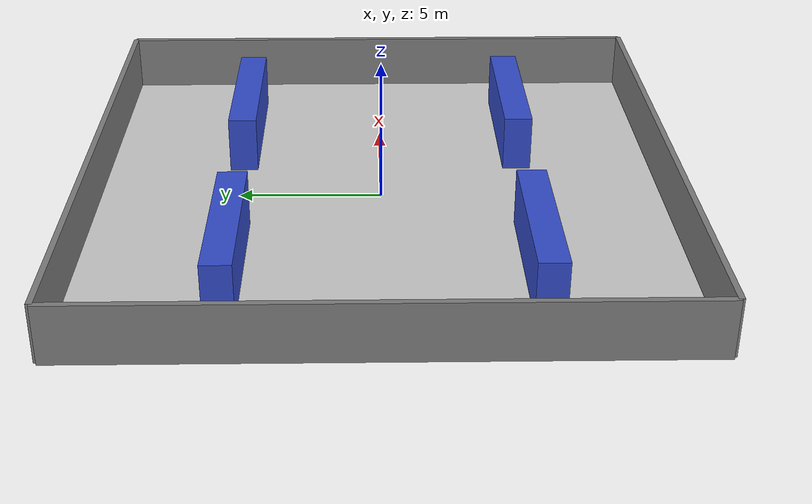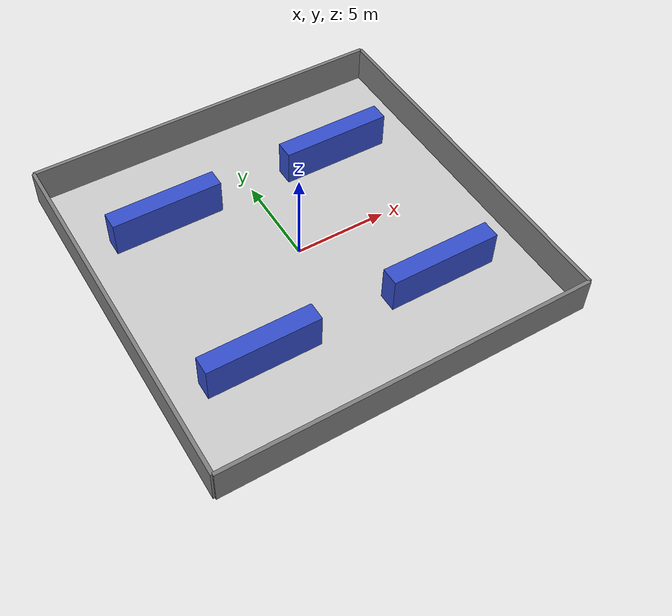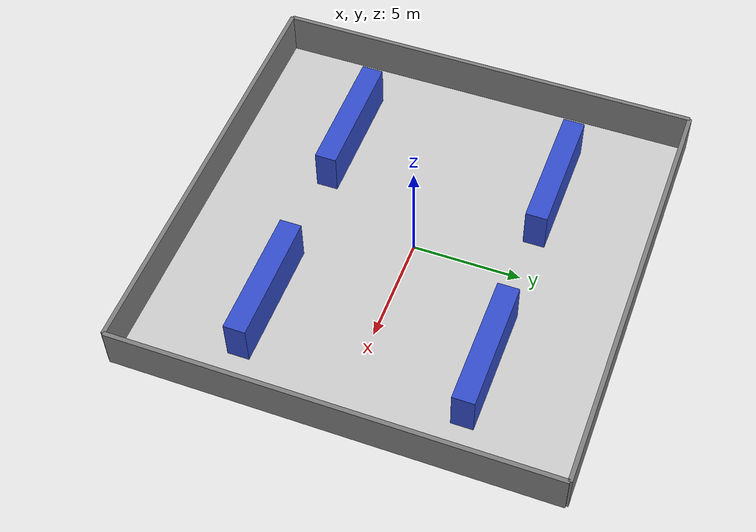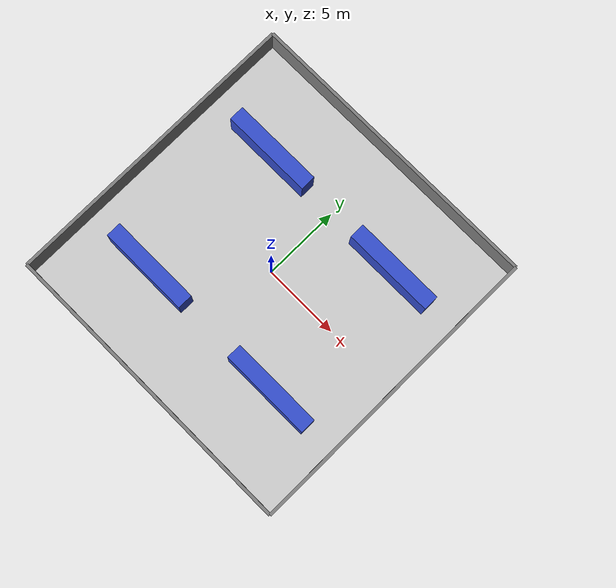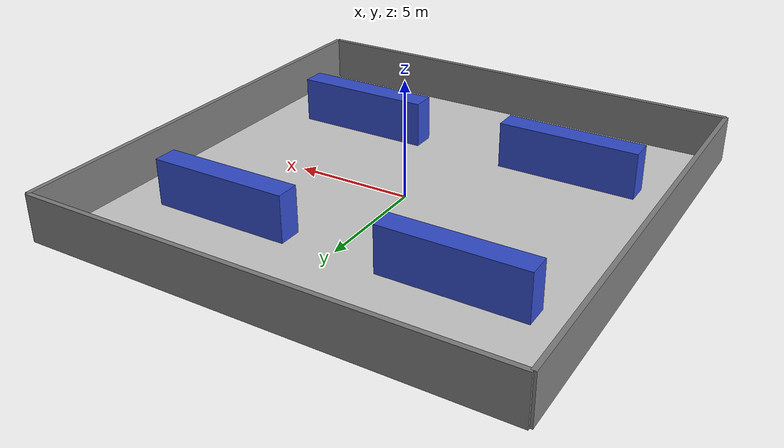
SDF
<?xml version="1.0"?>
<sdf version="1.6">
  <world name="warehouse">

    <!-- Physics settings -->
    <physics type="ode">
      <max_step_size>0.001</max_step_size>
      <real_time_factor>1.0</real_time_factor>
      <real_time_update_rate>1000</real_time_update_rate>
    </physics>

    <!-- Lighting -->
    <include>
      <uri>model://sun</uri>
    </include>

    <!-- Ground plane -->
    <include>
      <uri>model://ground_plane</uri>
    </include>

    <!-- Warehouse floor (20m x 20m) -->
    <model name="warehouse_floor">
      <static>true</static>
      <link name="floor">
        <visual name="visual">
          <geometry>
            <plane>
              <normal>0 0 1</normal>
              <size>20 20</size>
            </plane>
          </geometry>
          <material>
            <ambient>0.8 0.8 0.8 1</ambient>
            <diffuse>0.8 0.8 0.8 1</diffuse>
          </material>
        </visual>
      </link>
    </model>

    <!-- Outer walls -->
    <!-- North wall -->
    <model name="wall_north">
      <static>true</static>
      <pose>0 10 1 0 0 0</pose>
      <link name="link">
        <collision name="collision">
          <geometry>
            <box>
              <size>20 0.2 2</size>
            </box>
          </geometry>
        </collision>
        <visual name="visual">
          <geometry>
            <box>
              <size>20 0.2 2</size>
            </box>
          </geometry>
          <material>
            <ambient>0.5 0.5 0.5 1</ambient>
          </material>
        </visual>
      </link>
    </model>

    <!-- South wall -->
    <model name="wall_south">
      <static>true</static>
      <pose>0 -10 1 0 0 0</pose>
      <link name="link">
        <collision name="collision">
          <geometry>
            <box>
              <size>20 0.2 2</size>
            </box>
          </geometry>
        </collision>
        <visual name="visual">
          <geometry>
            <box>
              <size>20 0.2 2</size>
            </box>
          </geometry>
          <material>
            <ambient>0.5 0.5 0.5 1</ambient>
          </material>
        </visual>
      </link>
    </model>

    <!-- East wall -->
    <model name="wall_east">
      <static>true</static>
      <pose>10 0 1 0 0 0</pose>
      <link name="link">
        <collision name="collision">
          <geometry>
            <box>
              <size>0.2 20 2</size>
            </box>
          </geometry>
        </collision>
        <visual name="visual">
          <geometry>
            <box>
              <size>0.2 20 2</size>
            </box>
          </geometry>
          <material>
            <ambient>0.5 0.5 0.5 1</ambient>
          </material>
        </visual>
      </link>
    </model>

    <!-- West wall -->
    <model name="wall_west">
      <static>true</static>
      <pose>-10 0 1 0 0 0</pose>
      <link name="link">
        <collision name="collision">
          <geometry>
            <box>
              <size>0.2 20 2</size>
            </box>
          </geometry>
        </collision>
        <visual name="visual">
          <geometry>
            <box>
              <size>0.2 20 2</size>
            </box>
          </geometry>
          <material>
            <ambient>0.5 0.5 0.5 1</ambient>
          </material>
        </visual>
      </link>
    </model>

    <!-- Shelving units (like in your image) -->
    <!-- Shelf row 1 - Left side -->
    <model name="shelf_1">
      <static>true</static>
      <pose>-5 5 1 0 0 0</pose>
      <link name="link">
        <collision name="collision">
          <geometry>
            <box>
              <size>6 1 2</size>
            </box>
          </geometry>
        </collision>
        <visual name="visual">
          <geometry>
            <box>
              <size>6 1 2</size>
            </box>
          </geometry>
          <material>
            <ambient>0.2 0.3 0.8 1</ambient>
          </material>
        </visual>
      </link>
    </model>

    <!-- Shelf row 2 - Left side -->
    <model name="shelf_2">
      <static>true</static>
      <pose>-5 -5 1 0 0 0</pose>
      <link name="link">
        <collision name="collision">
          <geometry>
            <box>
              <size>6 1 2</size>
            </box>
          </geometry>
        </collision>
        <visual name="visual">
          <geometry>
            <box>
              <size>6 1 2</size>
            </box>
          </geometry>
          <material>
            <ambient>0.2 0.3 0.8 1</ambient>
          </material>
        </visual>
      </link>
    </model>

    <!-- Shelf row 3 - Right side -->
    <model name="shelf_3">
      <static>true</static>
      <pose>5 5 1 0 0 0</pose>
      <link name="link">
        <collision name="collision">
          <geometry>
            <box>
              <size>6 1 2</size>
            </box>
          </geometry>
        </collision>
        <visual name="visual">
          <geometry>
            <box>
              <size>6 1 2</size>
            </box>
          </geometry>
          <material>
            <ambient>0.2 0.3 0.8 1</ambient>
          </material>
        </visual>
      </link>
    </model>

    <!-- Shelf row 4 - Right side -->
    <model name="shelf_4">
      <static>true</static>
      <pose>5 -5 1 0 0 0</pose>
      <link name="link">
        <collision name="collision">
          <geometry>
            <box>
              <size>6 1 2</size>
            </box>
          </geometry>
        </collision>
        <visual name="visual">
          <geometry>
            <box>
              <size>6 1 2</size>
            </box>
          </geometry>
          <material>
            <ambient>0.2 0.3 0.8 1</ambient>
          </material>
        </visual>
      </link>
    </model>

  </world>
</sdf>
